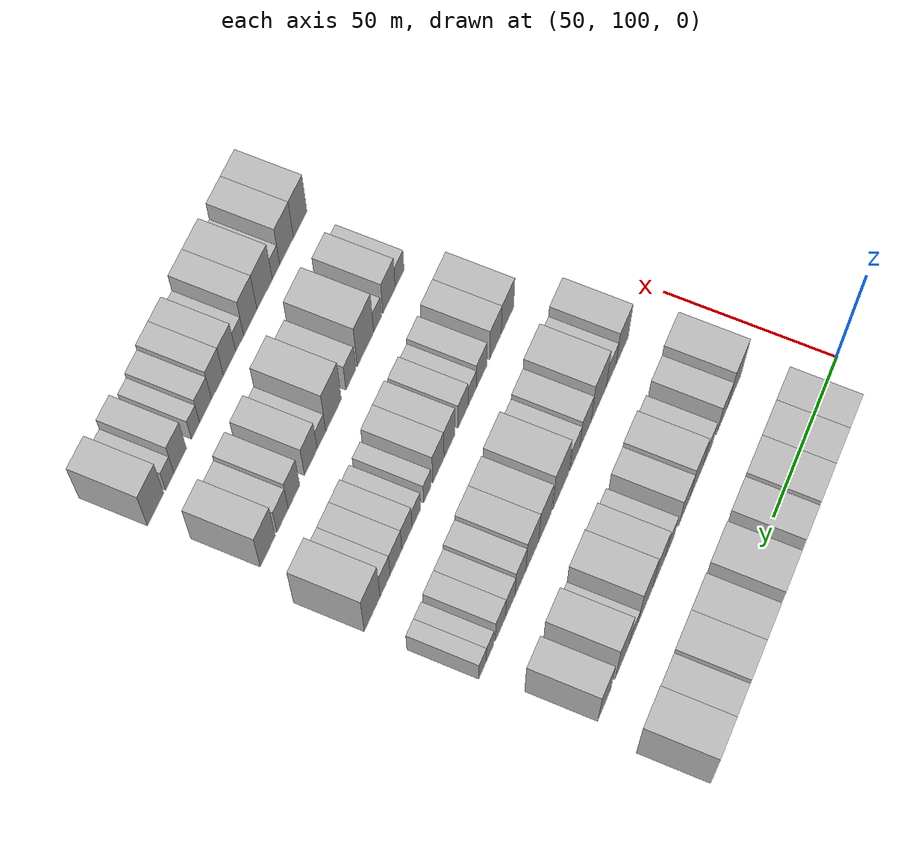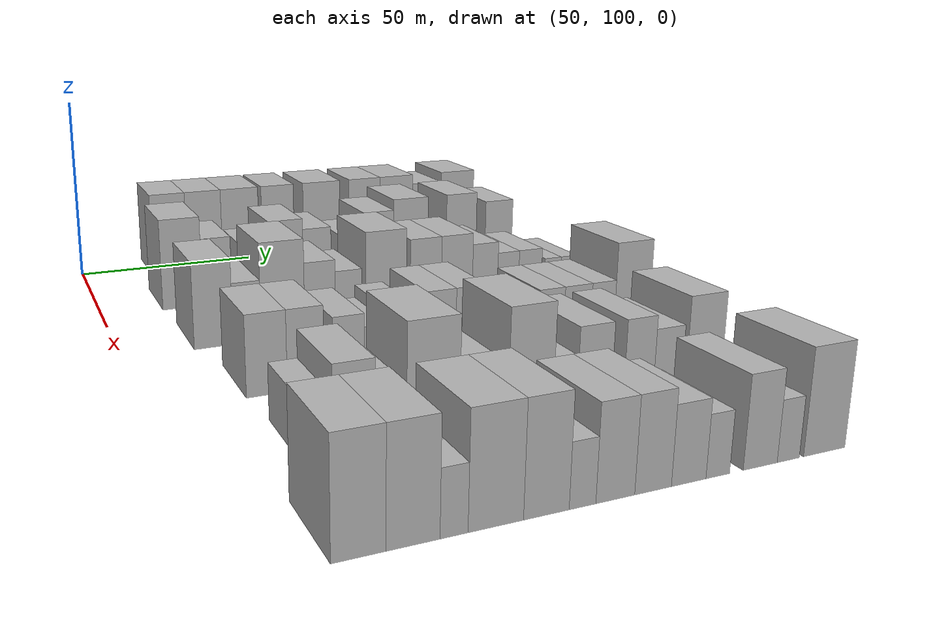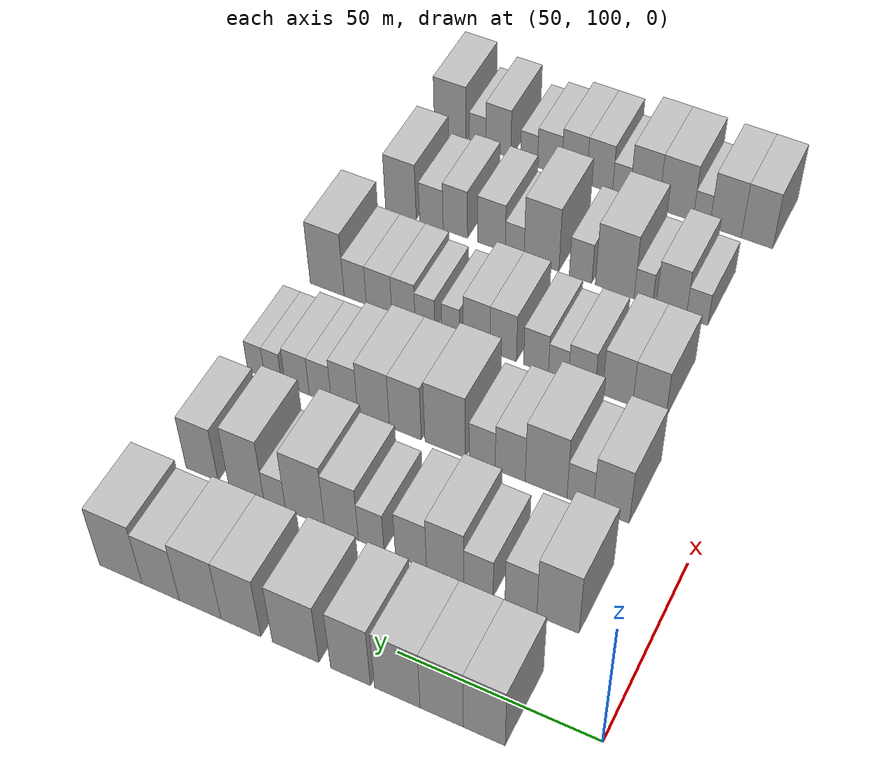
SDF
<sdf version="1.6">
 <world name="default">
  <model name="building_69">
   <static>1</static>
   <pose>50.0000 123.7591 0 0.000000 0.000000 0.000000</pose>
   <link name="link">
    <pose>0 0 12.00 0 0 0</pose>
    <collision name="collision"><geometry><box><size>20.0000 10.0753 24.0000</size></box></geometry></collision>
    <visual name="visual">
     <cast_shadows>0</cast_shadows>
     <geometry><box><size>20.0000 10.0753 24.0000</size></box></geometry>
     <material>
      <script>
       <uri>model://HANNAS_wall/materials/scripts</uri>
       <uri>model://HANNAS_wall/materials/textures</uri>
       <name>vrc/HANNAS_wall</name>
      </script>
     </material>
    </visual>
   </link>
  </model>
  <model name="building_70">
   <static>1</static>
   <pose>50.0000 134.0763 0 0.000000 0.000000 0.000000</pose>
   <link name="link">
    <pose>0 0 12.00 0 0 0</pose>
    <collision name="collision"><geometry><box><size>20.0000 10.5591 24.0000</size></box></geometry></collision>
    <visual name="visual">
     <cast_shadows>0</cast_shadows>
     <geometry><box><size>20.0000 10.5591 24.0000</size></box></geometry>
     <material>
      <script>
       <uri>model://HANNAS_wall/materials/scripts</uri>
       <uri>model://HANNAS_wall/materials/textures</uri>
       <name>vrc/HANNAS_wall</name>
      </script>
     </material>
    </visual>
   </link>
  </model>
  <model name="building_71">
   <static>1</static>
   <pose>50.0000 144.9980 0 0.000000 0.000000 0.000000</pose>
   <link name="link">
    <pose>0 0 12.00 0 0 0</pose>
    <collision name="collision"><geometry><box><size>20.0000 11.2843 24.0000</size></box></geometry></collision>
    <visual name="visual">
     <cast_shadows>0</cast_shadows>
     <geometry><box><size>20.0000 11.2843 24.0000</size></box></geometry>
     <material>
      <script>
       <uri>model://HANNAS_wall/materials/scripts</uri>
       <uri>model://HANNAS_wall/materials/textures</uri>
       <name>vrc/HANNAS_wall</name>
      </script>
     </material>
    </visual>
   </link>
  </model>
  <model name="building_72">
   <static>1</static>
   <pose>50.0000 156.6652 0 0.000000 0.000000 0.000000</pose>
   <link name="link">
    <pose>0 0 12.00 0 0 0</pose>
    <collision name="collision"><geometry><box><size>20.0000 10.0502 24.0000</size></box></geometry></collision>
    <visual name="visual">
     <cast_shadows>0</cast_shadows>
     <geometry><box><size>20.0000 10.0502 24.0000</size></box></geometry>
     <material>
      <script>
       <uri>model://HANNAS_wall/materials/scripts</uri>
       <uri>model://HANNAS_wall/materials/textures</uri>
       <name>vrc/HANNAS_wall</name>
      </script>
     </material>
    </visual>
   </link>
  </model>
  <model name="building_73">
   <static>1</static>
   <pose>50.0000 170.6518 0 0.000000 0.000000 0.000000</pose>
   <link name="link">
    <pose>0 0 12.00 0 0 0</pose>
    <collision name="collision"><geometry><box><size>20.0000 11.9229 24.0000</size></box></geometry></collision>
    <visual name="visual">
     <cast_shadows>0</cast_shadows>
     <geometry><box><size>20.0000 11.9229 24.0000</size></box></geometry>
     <material>
      <script>
       <uri>model://HANNAS_wall/materials/scripts</uri>
       <uri>model://HANNAS_wall/materials/textures</uri>
       <name>vrc/HANNAS_wall</name>
      </script>
     </material>
    </visual>
   </link>
  </model>
  <model name="building_74">
   <static>1</static>
   <pose>50.0000 184.8121 0 0.000000 0.000000 0.000000</pose>
   <link name="link">
    <pose>0 0 12.00 0 0 0</pose>
    <collision name="collision"><geometry><box><size>20.0000 10.3978 24.0000</size></box></geometry></collision>
    <visual name="visual">
     <cast_shadows>0</cast_shadows>
     <geometry><box><size>20.0000 10.3978 24.0000</size></box></geometry>
     <material>
      <script>
       <uri>model://HANNAS_wall/materials/scripts</uri>
       <uri>model://HANNAS_wall/materials/textures</uri>
       <name>vrc/HANNAS_wall</name>
      </script>
     </material>
    </visual>
   </link>
  </model>
  <model name="building_75">
   <static>1</static>
   <pose>50.0000 195.5651 0 0.000000 0.000000 0.000000</pose>
   <link name="link">
    <pose>0 0 12.00 0 0 0</pose>
    <collision name="collision"><geometry><box><size>20.0000 11.1081 24.0000</size></box></geometry></collision>
    <visual name="visual">
     <cast_shadows>0</cast_shadows>
     <geometry><box><size>20.0000 11.1081 24.0000</size></box></geometry>
     <material>
      <script>
       <uri>model://HANNAS_wall/materials/scripts</uri>
       <uri>model://HANNAS_wall/materials/textures</uri>
       <name>vrc/HANNAS_wall</name>
      </script>
     </material>
    </visual>
   </link>
  </model>
  <model name="building_76">
   <static>1</static>
   <pose>50.0000 206.1168 0 0.000000 0.000000 0.000000</pose>
   <link name="link">
    <pose>0 0 10.50 0 0 0</pose>
    <collision name="collision"><geometry><box><size>20.0000 9.9954 21.0000</size></box></geometry></collision>
    <visual name="visual">
     <cast_shadows>0</cast_shadows>
     <geometry><box><size>20.0000 9.9954 21.0000</size></box></geometry>
     <material>
      <script>
       <uri>model://HANNAS_wall/materials/scripts</uri>
       <uri>model://HANNAS_wall/materials/textures</uri>
       <name>vrc/HANNAS_wall</name>
      </script>
     </material>
    </visual>
   </link>
  </model>
  <model name="building_77">
   <static>1</static>
   <pose>50.0000 216.9283 0 0.000000 0.000000 0.000000</pose>
   <link name="link">
    <pose>0 0 12.00 0 0 0</pose>
    <collision name="collision"><geometry><box><size>20.0000 11.6275 24.0000</size></box></geometry></collision>
    <visual name="visual">
     <cast_shadows>0</cast_shadows>
     <geometry><box><size>20.0000 11.6275 24.0000</size></box></geometry>
     <material>
      <script>
       <uri>model://HANNAS_wall/materials/scripts</uri>
       <uri>model://HANNAS_wall/materials/textures</uri>
       <name>vrc/HANNAS_wall</name>
      </script>
     </material>
    </visual>
   </link>
  </model>
  <model name="building_168">
   <static>1</static>
   <pose>82.0000 120.6377 0 0.000000 0.000000 0.000000</pose>
   <link name="link">
    <pose>0 0 12.00 0 0 0</pose>
    <collision name="collision"><geometry><box><size>20.0000 10.4998 24.0000</size></box></geometry></collision>
    <visual name="visual">
     <cast_shadows>0</cast_shadows>
     <geometry><box><size>20.0000 10.4998 24.0000</size></box></geometry>
     <material>
      <script>
       <uri>model://HANNAS_wall/materials/scripts</uri>
       <uri>model://HANNAS_wall/materials/textures</uri>
       <name>vrc/HANNAS_wall</name>
      </script>
     </material>
    </visual>
   </link>
  </model>
  <model name="building_169">
   <static>1</static>
   <pose>82.0000 129.8772 0 0.000000 0.000000 0.000000</pose>
   <link name="link">
    <pose>0 0 9.00 0 0 0</pose>
    <collision name="collision"><geometry><box><size>20.0000 7.9793 18.0000</size></box></geometry></collision>
    <visual name="visual">
     <cast_shadows>0</cast_shadows>
     <geometry><box><size>20.0000 7.9793 18.0000</size></box></geometry>
     <material>
      <script>
       <uri>model://HANNAS_wall/materials/scripts</uri>
       <uri>model://HANNAS_wall/materials/textures</uri>
       <name>vrc/HANNAS_wall</name>
      </script>
     </material>
    </visual>
   </link>
  </model>
  <model name="building_170">
   <static>1</static>
   <pose>82.0000 140.5922 0 0.000000 0.000000 0.000000</pose>
   <link name="link">
    <pose>0 0 7.50 0 0 0</pose>
    <collision name="collision"><geometry><box><size>20.0000 7.4507 15.0000</size></box></geometry></collision>
    <visual name="visual">
     <cast_shadows>0</cast_shadows>
     <geometry><box><size>20.0000 7.4507 15.0000</size></box></geometry>
     <material>
      <script>
       <uri>model://HANNAS_wall/materials/scripts</uri>
       <uri>model://HANNAS_wall/materials/textures</uri>
       <name>vrc/HANNAS_wall</name>
      </script>
     </material>
    </visual>
   </link>
  </model>
  <model name="building_171">
   <static>1</static>
   <pose>82.0000 149.1295 0 0.000000 0.000000 0.000000</pose>
   <link name="link">
    <pose>0 0 10.50 0 0 0</pose>
    <collision name="collision"><geometry><box><size>20.0000 9.6239 21.0000</size></box></geometry></collision>
    <visual name="visual">
     <cast_shadows>0</cast_shadows>
     <geometry><box><size>20.0000 9.6239 21.0000</size></box></geometry>
     <material>
      <script>
       <uri>model://HANNAS_wall/materials/scripts</uri>
       <uri>model://HANNAS_wall/materials/textures</uri>
       <name>vrc/HANNAS_wall</name>
      </script>
     </material>
    </visual>
   </link>
  </model>
  <model name="building_172">
   <static>1</static>
   <pose>82.0000 157.9962 0 0.000000 0.000000 0.000000</pose>
   <link name="link">
    <pose>0 0 9.00 0 0 0</pose>
    <collision name="collision"><geometry><box><size>20.0000 8.1096 18.0000</size></box></geometry></collision>
    <visual name="visual">
     <cast_shadows>0</cast_shadows>
     <geometry><box><size>20.0000 8.1096 18.0000</size></box></geometry>
     <material>
      <script>
       <uri>model://HANNAS_wall/materials/scripts</uri>
       <uri>model://HANNAS_wall/materials/textures</uri>
       <name>vrc/HANNAS_wall</name>
      </script>
     </material>
    </visual>
   </link>
  </model>
  <model name="building_173">
   <static>1</static>
   <pose>82.0000 168.4247 0 0.000000 0.000000 0.000000</pose>
   <link name="link">
    <pose>0 0 7.50 0 0 0</pose>
    <collision name="collision"><geometry><box><size>20.0000 6.7474 15.0000</size></box></geometry></collision>
    <visual name="visual">
     <cast_shadows>0</cast_shadows>
     <geometry><box><size>20.0000 6.7474 15.0000</size></box></geometry>
     <material>
      <script>
       <uri>model://HANNAS_wall/materials/scripts</uri>
       <uri>model://HANNAS_wall/materials/textures</uri>
       <name>vrc/HANNAS_wall</name>
      </script>
     </material>
    </visual>
   </link>
  </model>
  <model name="building_174">
   <static>1</static>
   <pose>82.0000 176.3094 0 0.000000 0.000000 0.000000</pose>
   <link name="link">
    <pose>0 0 10.50 0 0 0</pose>
    <collision name="collision"><geometry><box><size>20.0000 9.0221 21.0000</size></box></geometry></collision>
    <visual name="visual">
     <cast_shadows>0</cast_shadows>
     <geometry><box><size>20.0000 9.0221 21.0000</size></box></geometry>
     <material>
      <script>
       <uri>model://HANNAS_wall/materials/scripts</uri>
       <uri>model://HANNAS_wall/materials/textures</uri>
       <name>vrc/HANNAS_wall</name>
      </script>
     </material>
    </visual>
   </link>
  </model>
  <model name="building_175">
   <static>1</static>
   <pose>82.0000 186.1241 0 0.000000 0.000000 0.000000</pose>
   <link name="link">
    <pose>0 0 12.00 0 0 0</pose>
    <collision name="collision"><geometry><box><size>20.0000 10.6072 24.0000</size></box></geometry></collision>
    <visual name="visual">
     <cast_shadows>0</cast_shadows>
     <geometry><box><size>20.0000 10.6072 24.0000</size></box></geometry>
     <material>
      <script>
       <uri>model://HANNAS_wall/materials/scripts</uri>
       <uri>model://HANNAS_wall/materials/textures</uri>
       <name>vrc/HANNAS_wall</name>
      </script>
     </material>
    </visual>
   </link>
  </model>
  <model name="building_176">
   <static>1</static>
   <pose>82.0000 194.3829 0 0.000000 0.000000 0.000000</pose>
   <link name="link">
    <pose>0 0 6.00 0 0 0</pose>
    <collision name="collision"><geometry><box><size>20.0000 5.9103 12.0000</size></box></geometry></collision>
    <visual name="visual">
     <cast_shadows>0</cast_shadows>
     <geometry><box><size>20.0000 5.9103 12.0000</size></box></geometry>
     <material>
      <script>
       <uri>model://HANNAS_wall/materials/scripts</uri>
       <uri>model://HANNAS_wall/materials/textures</uri>
       <name>vrc/HANNAS_wall</name>
      </script>
     </material>
    </visual>
   </link>
  </model>
  <model name="building_177">
   <static>1</static>
   <pose>82.0000 202.1694 0 0.000000 0.000000 0.000000</pose>
   <link name="link">
    <pose>0 0 12.00 0 0 0</pose>
    <collision name="collision"><geometry><box><size>20.0000 9.6629 24.0000</size></box></geometry></collision>
    <visual name="visual">
     <cast_shadows>0</cast_shadows>
     <geometry><box><size>20.0000 9.6629 24.0000</size></box></geometry>
     <material>
      <script>
       <uri>model://HANNAS_wall/materials/scripts</uri>
       <uri>model://HANNAS_wall/materials/textures</uri>
       <name>vrc/HANNAS_wall</name>
      </script>
     </material>
    </visual>
   </link>
  </model>
  <model name="building_178">
   <static>1</static>
   <pose>82.0000 214.4754 0 0.000000 0.000000 0.000000</pose>
   <link name="link">
    <pose>0 0 10.50 0 0 0</pose>
    <collision name="collision"><geometry><box><size>20.0000 8.9491 21.0000</size></box></geometry></collision>
    <visual name="visual">
     <cast_shadows>0</cast_shadows>
     <geometry><box><size>20.0000 8.9491 21.0000</size></box></geometry>
     <material>
      <script>
       <uri>model://HANNAS_wall/materials/scripts</uri>
       <uri>model://HANNAS_wall/materials/textures</uri>
       <name>vrc/HANNAS_wall</name>
      </script>
     </material>
    </visual>
   </link>
  </model>
  <model name="building_288">
   <static>1</static>
   <pose>114.0000 121.1689 0 0.000000 0.000000 0.000000</pose>
   <link name="link">
    <pose>0 0 10.50 0 0 0</pose>
    <collision name="collision"><geometry><box><size>20.0000 9.2484 21.0000</size></box></geometry></collision>
    <visual name="visual">
     <cast_shadows>0</cast_shadows>
     <geometry><box><size>20.0000 9.2484 21.0000</size></box></geometry>
     <material>
      <script>
       <uri>model://HANNAS_wall/materials/scripts</uri>
       <uri>model://HANNAS_wall/materials/textures</uri>
       <name>vrc/HANNAS_wall</name>
      </script>
     </material>
    </visual>
   </link>
  </model>
  <model name="building_289">
   <static>1</static>
   <pose>114.0000 129.2201 0 0.000000 0.000000 0.000000</pose>
   <link name="link">
    <pose>0 0 7.50 0 0 0</pose>
    <collision name="collision"><geometry><box><size>20.0000 6.8539 15.0000</size></box></geometry></collision>
    <visual name="visual">
     <cast_shadows>0</cast_shadows>
     <geometry><box><size>20.0000 6.8539 15.0000</size></box></geometry>
     <material>
      <script>
       <uri>model://HANNAS_wall/materials/scripts</uri>
       <uri>model://HANNAS_wall/materials/textures</uri>
       <name>vrc/HANNAS_wall</name>
      </script>
     </material>
    </visual>
   </link>
  </model>
  <model name="building_290">
   <static>1</static>
   <pose>114.0000 138.1390 0 0.000000 0.000000 0.000000</pose>
   <link name="link">
    <pose>0 0 12.00 0 0 0</pose>
    <collision name="collision"><geometry><box><size>20.0000 10.9840 24.0000</size></box></geometry></collision>
    <visual name="visual">
     <cast_shadows>0</cast_shadows>
     <geometry><box><size>20.0000 10.9840 24.0000</size></box></geometry>
     <material>
      <script>
       <uri>model://HANNAS_wall/materials/scripts</uri>
       <uri>model://HANNAS_wall/materials/textures</uri>
       <name>vrc/HANNAS_wall</name>
      </script>
     </material>
    </visual>
   </link>
  </model>
  <model name="building_291">
   <static>1</static>
   <pose>114.0000 147.6111 0 0.000000 0.000000 0.000000</pose>
   <link name="link">
    <pose>0 0 9.00 0 0 0</pose>
    <collision name="collision"><geometry><box><size>20.0000 7.9601 18.0000</size></box></geometry></collision>
    <visual name="visual">
     <cast_shadows>0</cast_shadows>
     <geometry><box><size>20.0000 7.9601 18.0000</size></box></geometry>
     <material>
      <script>
       <uri>model://HANNAS_wall/materials/scripts</uri>
       <uri>model://HANNAS_wall/materials/textures</uri>
       <name>vrc/HANNAS_wall</name>
      </script>
     </material>
    </visual>
   </link>
  </model>
  <model name="building_292">
   <static>1</static>
   <pose>114.0000 155.0831 0 0.000000 0.000000 0.000000</pose>
   <link name="link">
    <pose>0 0 7.50 0 0 0</pose>
    <collision name="collision"><geometry><box><size>20.0000 6.9839 15.0000</size></box></geometry></collision>
    <visual name="visual">
     <cast_shadows>0</cast_shadows>
     <geometry><box><size>20.0000 6.9839 15.0000</size></box></geometry>
     <material>
      <script>
       <uri>model://HANNAS_wall/materials/scripts</uri>
       <uri>model://HANNAS_wall/materials/textures</uri>
       <name>vrc/HANNAS_wall</name>
      </script>
     </material>
    </visual>
   </link>
  </model>
  <model name="building_293">
   <static>1</static>
   <pose>114.0000 165.0633 0 0.000000 0.000000 0.000000</pose>
   <link name="link">
    <pose>0 0 12.00 0 0 0</pose>
    <collision name="collision"><geometry><box><size>20.0000 10.9765 24.0000</size></box></geometry></collision>
    <visual name="visual">
     <cast_shadows>0</cast_shadows>
     <geometry><box><size>20.0000 10.9765 24.0000</size></box></geometry>
     <material>
      <script>
       <uri>model://HANNAS_wall/materials/scripts</uri>
       <uri>model://HANNAS_wall/materials/textures</uri>
       <name>vrc/HANNAS_wall</name>
      </script>
     </material>
    </visual>
   </link>
  </model>
  <model name="building_294">
   <static>1</static>
   <pose>114.0000 175.9234 0 0.000000 0.000000 0.000000</pose>
   <link name="link">
    <pose>0 0 10.50 0 0 0</pose>
    <collision name="collision"><geometry><box><size>20.0000 8.7436 21.0000</size></box></geometry></collision>
    <visual name="visual">
     <cast_shadows>0</cast_shadows>
     <geometry><box><size>20.0000 8.7436 21.0000</size></box></geometry>
     <material>
      <script>
       <uri>model://HANNAS_wall/materials/scripts</uri>
       <uri>model://HANNAS_wall/materials/textures</uri>
       <name>vrc/HANNAS_wall</name>
      </script>
     </material>
    </visual>
   </link>
  </model>
  <model name="building_295">
   <static>1</static>
   <pose>114.0000 184.7116 0 0.000000 0.000000 0.000000</pose>
   <link name="link">
    <pose>0 0 10.50 0 0 0</pose>
    <collision name="collision"><geometry><box><size>20.0000 8.8327 21.0000</size></box></geometry></collision>
    <visual name="visual">
     <cast_shadows>0</cast_shadows>
     <geometry><box><size>20.0000 8.8327 21.0000</size></box></geometry>
     <material>
      <script>
       <uri>model://HANNAS_wall/materials/scripts</uri>
       <uri>model://HANNAS_wall/materials/textures</uri>
       <name>vrc/HANNAS_wall</name>
      </script>
     </material>
    </visual>
   </link>
  </model>
  <model name="building_296">
   <static>1</static>
   <pose>114.0000 192.8135 0 0.000000 0.000000 0.000000</pose>
   <link name="link">
    <pose>0 0 9.00 0 0 0</pose>
    <collision name="collision"><geometry><box><size>20.0000 7.3713 18.0000</size></box></geometry></collision>
    <visual name="visual">
     <cast_shadows>0</cast_shadows>
     <geometry><box><size>20.0000 7.3713 18.0000</size></box></geometry>
     <material>
      <script>
       <uri>model://HANNAS_wall/materials/scripts</uri>
       <uri>model://HANNAS_wall/materials/textures</uri>
       <name>vrc/HANNAS_wall</name>
      </script>
     </material>
    </visual>
   </link>
  </model>
  <model name="building_297">
   <static>1</static>
   <pose>114.0000 199.6403 0 0.000000 0.000000 0.000000</pose>
   <link name="link">
    <pose>0 0 7.50 0 0 0</pose>
    <collision name="collision"><geometry><box><size>20.0000 6.2823 15.0000</size></box></geometry></collision>
    <visual name="visual">
     <cast_shadows>0</cast_shadows>
     <geometry><box><size>20.0000 6.2823 15.0000</size></box></geometry>
     <material>
      <script>
       <uri>model://HANNAS_wall/materials/scripts</uri>
       <uri>model://HANNAS_wall/materials/textures</uri>
       <name>vrc/HANNAS_wall</name>
      </script>
     </material>
    </visual>
   </link>
  </model>
  <model name="building_298">
   <static>1</static>
   <pose>114.0000 206.2403 0 0.000000 0.000000 0.000000</pose>
   <link name="link">
    <pose>0 0 7.50 0 0 0</pose>
    <collision name="collision"><geometry><box><size>20.0000 6.9176 15.0000</size></box></geometry></collision>
    <visual name="visual">
     <cast_shadows>0</cast_shadows>
     <geometry><box><size>20.0000 6.9176 15.0000</size></box></geometry>
     <material>
      <script>
       <uri>model://HANNAS_wall/materials/scripts</uri>
       <uri>model://HANNAS_wall/materials/textures</uri>
       <name>vrc/HANNAS_wall</name>
      </script>
     </material>
    </visual>
   </link>
  </model>
  <model name="building_299">
   <static>1</static>
   <pose>114.0000 213.1508 0 0.000000 0.000000 0.000000</pose>
   <link name="link">
    <pose>0 0 6.00 0 0 0</pose>
    <collision name="collision"><geometry><box><size>20.0000 4.9034 12.0000</size></box></geometry></collision>
    <visual name="visual">
     <cast_shadows>0</cast_shadows>
     <geometry><box><size>20.0000 4.9034 12.0000</size></box></geometry>
     <material>
      <script>
       <uri>model://HANNAS_wall/materials/scripts</uri>
       <uri>model://HANNAS_wall/materials/textures</uri>
       <name>vrc/HANNAS_wall</name>
      </script>
     </material>
    </visual>
   </link>
  </model>
  <model name="building_300">
   <static>1</static>
   <pose>114.0000 218.0530 0 0.000000 0.000000 0.000000</pose>
   <link name="link">
    <pose>0 0 6.00 0 0 0</pose>
    <collision name="collision"><geometry><box><size>20.0000 4.9011 12.0000</size></box></geometry></collision>
    <visual name="visual">
     <cast_shadows>0</cast_shadows>
     <geometry><box><size>20.0000 4.9011 12.0000</size></box></geometry>
     <material>
      <script>
       <uri>model://HANNAS_wall/materials/scripts</uri>
       <uri>model://HANNAS_wall/materials/textures</uri>
       <name>vrc/HANNAS_wall</name>
      </script>
     </material>
    </visual>
   </link>
  </model>
  <model name="building_412">
   <static>1</static>
   <pose>146.0000 124.6776 0 0.000000 0.000000 0.000000</pose>
   <link name="link">
    <pose>0 0 9.00 0 0 0</pose>
    <collision name="collision"><geometry><box><size>20.0000 8.8082 18.0000</size></box></geometry></collision>
    <visual name="visual">
     <cast_shadows>0</cast_shadows>
     <geometry><box><size>20.0000 8.8082 18.0000</size></box></geometry>
     <material>
      <script>
       <uri>model://HANNAS_wall/materials/scripts</uri>
       <uri>model://HANNAS_wall/materials/textures</uri>
       <name>vrc/HANNAS_wall</name>
      </script>
     </material>
    </visual>
   </link>
  </model>
  <model name="building_413">
   <static>1</static>
   <pose>146.0000 133.1468 0 0.000000 0.000000 0.000000</pose>
   <link name="link">
    <pose>0 0 9.00 0 0 0</pose>
    <collision name="collision"><geometry><box><size>20.0000 8.1303 18.0000</size></box></geometry></collision>
    <visual name="visual">
     <cast_shadows>0</cast_shadows>
     <geometry><box><size>20.0000 8.1303 18.0000</size></box></geometry>
     <material>
      <script>
       <uri>model://HANNAS_wall/materials/scripts</uri>
       <uri>model://HANNAS_wall/materials/textures</uri>
       <name>vrc/HANNAS_wall</name>
      </script>
     </material>
    </visual>
   </link>
  </model>
  <model name="building_414">
   <static>1</static>
   <pose>146.0000 142.8515 0 0.000000 0.000000 0.000000</pose>
   <link name="link">
    <pose>0 0 7.50 0 0 0</pose>
    <collision name="collision"><geometry><box><size>20.0000 7.2791 15.0000</size></box></geometry></collision>
    <visual name="visual">
     <cast_shadows>0</cast_shadows>
     <geometry><box><size>20.0000 7.2791 15.0000</size></box></geometry>
     <material>
      <script>
       <uri>model://HANNAS_wall/materials/scripts</uri>
       <uri>model://HANNAS_wall/materials/textures</uri>
       <name>vrc/HANNAS_wall</name>
      </script>
     </material>
    </visual>
   </link>
  </model>
  <model name="building_415">
   <static>1</static>
   <pose>146.0000 149.2528 0 0.000000 0.000000 0.000000</pose>
   <link name="link">
    <pose>0 0 6.00 0 0 0</pose>
    <collision name="collision"><geometry><box><size>20.0000 5.5235 12.0000</size></box></geometry></collision>
    <visual name="visual">
     <cast_shadows>0</cast_shadows>
     <geometry><box><size>20.0000 5.5235 12.0000</size></box></geometry>
     <material>
      <script>
       <uri>model://HANNAS_wall/materials/scripts</uri>
       <uri>model://HANNAS_wall/materials/textures</uri>
       <name>vrc/HANNAS_wall</name>
      </script>
     </material>
    </visual>
   </link>
  </model>
  <model name="building_416">
   <static>1</static>
   <pose>146.0000 155.4478 0 0.000000 0.000000 0.000000</pose>
   <link name="link">
    <pose>0 0 7.50 0 0 0</pose>
    <collision name="collision"><geometry><box><size>20.0000 6.8664 15.0000</size></box></geometry></collision>
    <visual name="visual">
     <cast_shadows>0</cast_shadows>
     <geometry><box><size>20.0000 6.8664 15.0000</size></box></geometry>
     <material>
      <script>
       <uri>model://HANNAS_wall/materials/scripts</uri>
       <uri>model://HANNAS_wall/materials/textures</uri>
       <name>vrc/HANNAS_wall</name>
      </script>
     </material>
    </visual>
   </link>
  </model>
  <model name="building_417">
   <static>1</static>
   <pose>146.0000 164.5799 0 0.000000 0.000000 0.000000</pose>
   <link name="link">
    <pose>0 0 9.00 0 0 0</pose>
    <collision name="collision"><geometry><box><size>20.0000 7.3980 18.0000</size></box></geometry></collision>
    <visual name="visual">
     <cast_shadows>0</cast_shadows>
     <geometry><box><size>20.0000 7.3980 18.0000</size></box></geometry>
     <material>
      <script>
       <uri>model://HANNAS_wall/materials/scripts</uri>
       <uri>model://HANNAS_wall/materials/textures</uri>
       <name>vrc/HANNAS_wall</name>
      </script>
     </material>
    </visual>
   </link>
  </model>
  <model name="building_418">
   <static>1</static>
   <pose>146.0000 172.0785 0 0.000000 0.000000 0.000000</pose>
   <link name="link">
    <pose>0 0 9.00 0 0 0</pose>
    <collision name="collision"><geometry><box><size>20.0000 7.5991 18.0000</size></box></geometry></collision>
    <visual name="visual">
     <cast_shadows>0</cast_shadows>
     <geometry><box><size>20.0000 7.5991 18.0000</size></box></geometry>
     <material>
      <script>
       <uri>model://HANNAS_wall/materials/scripts</uri>
       <uri>model://HANNAS_wall/materials/textures</uri>
       <name>vrc/HANNAS_wall</name>
      </script>
     </material>
    </visual>
   </link>
  </model>
  <model name="building_419">
   <static>1</static>
   <pose>146.0000 179.4049 0 0.000000 0.000000 0.000000</pose>
   <link name="link">
    <pose>0 0 6.00 0 0 0</pose>
    <collision name="collision"><geometry><box><size>20.0000 5.0537 12.0000</size></box></geometry></collision>
    <visual name="visual">
     <cast_shadows>0</cast_shadows>
     <geometry><box><size>20.0000 5.0537 12.0000</size></box></geometry>
     <material>
      <script>
       <uri>model://HANNAS_wall/materials/scripts</uri>
       <uri>model://HANNAS_wall/materials/textures</uri>
       <name>vrc/HANNAS_wall</name>
      </script>
     </material>
    </visual>
   </link>
  </model>
  <model name="building_420">
   <static>1</static>
   <pose>146.0000 186.7535 0 0.000000 0.000000 0.000000</pose>
   <link name="link">
    <pose>0 0 6.00 0 0 0</pose>
    <collision name="collision"><geometry><box><size>20.0000 5.6435 12.0000</size></box></geometry></collision>
    <visual name="visual">
     <cast_shadows>0</cast_shadows>
     <geometry><box><size>20.0000 5.6435 12.0000</size></box></geometry>
     <material>
      <script>
       <uri>model://HANNAS_wall/materials/scripts</uri>
       <uri>model://HANNAS_wall/materials/textures</uri>
       <name>vrc/HANNAS_wall</name>
      </script>
     </material>
    </visual>
   </link>
  </model>
  <model name="building_421">
   <static>1</static>
   <pose>146.0000 192.9501 0 0.000000 0.000000 0.000000</pose>
   <link name="link">
    <pose>0 0 7.50 0 0 0</pose>
    <collision name="collision"><geometry><box><size>20.0000 6.7498 15.0000</size></box></geometry></collision>
    <visual name="visual">
     <cast_shadows>0</cast_shadows>
     <geometry><box><size>20.0000 6.7498 15.0000</size></box></geometry>
     <material>
      <script>
       <uri>model://HANNAS_wall/materials/scripts</uri>
       <uri>model://HANNAS_wall/materials/textures</uri>
       <name>vrc/HANNAS_wall</name>
      </script>
     </material>
    </visual>
   </link>
  </model>
  <model name="building_422">
   <static>1</static>
   <pose>146.0000 200.0481 0 0.000000 0.000000 0.000000</pose>
   <link name="link">
    <pose>0 0 7.50 0 0 0</pose>
    <collision name="collision"><geometry><box><size>20.0000 7.4462 15.0000</size></box></geometry></collision>
    <visual name="visual">
     <cast_shadows>0</cast_shadows>
     <geometry><box><size>20.0000 7.4462 15.0000</size></box></geometry>
     <material>
      <script>
       <uri>model://HANNAS_wall/materials/scripts</uri>
       <uri>model://HANNAS_wall/materials/textures</uri>
       <name>vrc/HANNAS_wall</name>
      </script>
     </material>
    </visual>
   </link>
  </model>
  <model name="building_423">
   <static>1</static>
   <pose>146.0000 207.0481 0 0.000000 0.000000 0.000000</pose>
   <link name="link">
    <pose>0 0 7.50 0 0 0</pose>
    <collision name="collision"><geometry><box><size>20.0000 6.5536 15.0000</size></box></geometry></collision>
    <visual name="visual">
     <cast_shadows>0</cast_shadows>
     <geometry><box><size>20.0000 6.5536 15.0000</size></box></geometry>
     <material>
      <script>
       <uri>model://HANNAS_wall/materials/scripts</uri>
       <uri>model://HANNAS_wall/materials/textures</uri>
       <name>vrc/HANNAS_wall</name>
      </script>
     </material>
    </visual>
   </link>
  </model>
  <model name="building_424">
   <static>1</static>
   <pose>146.0000 215.3480 0 0.000000 0.000000 0.000000</pose>
   <link name="link">
    <pose>0 0 12.00 0 0 0</pose>
    <collision name="collision"><geometry><box><size>20.0000 10.0463 24.0000</size></box></geometry></collision>
    <visual name="visual">
     <cast_shadows>0</cast_shadows>
     <geometry><box><size>20.0000 10.0463 24.0000</size></box></geometry>
     <material>
      <script>
       <uri>model://HANNAS_wall/materials/scripts</uri>
       <uri>model://HANNAS_wall/materials/textures</uri>
       <name>vrc/HANNAS_wall</name>
      </script>
     </material>
    </visual>
   </link>
  </model>
  <model name="building_539">
   <static>1</static>
   <pose>178.0000 124.5671 0 0.000000 0.000000 0.000000</pose>
   <link name="link">
    <pose>0 0 6.00 0 0 0</pose>
    <collision name="collision"><geometry><box><size>20.0000 5.9728 12.0000</size></box></geometry></collision>
    <visual name="visual">
     <cast_shadows>0</cast_shadows>
     <geometry><box><size>20.0000 5.9728 12.0000</size></box></geometry>
     <material>
      <script>
       <uri>model://HANNAS_wall/materials/scripts</uri>
       <uri>model://HANNAS_wall/materials/textures</uri>
       <name>vrc/HANNAS_wall</name>
      </script>
     </material>
    </visual>
   </link>
  </model>
  <model name="building_540">
   <static>1</static>
   <pose>178.0000 131.7388 0 0.000000 0.000000 0.000000</pose>
   <link name="link">
    <pose>0 0 9.00 0 0 0</pose>
    <collision name="collision"><geometry><box><size>20.0000 8.3706 18.0000</size></box></geometry></collision>
    <visual name="visual">
     <cast_shadows>0</cast_shadows>
     <geometry><box><size>20.0000 8.3706 18.0000</size></box></geometry>
     <material>
      <script>
       <uri>model://HANNAS_wall/materials/scripts</uri>
       <uri>model://HANNAS_wall/materials/textures</uri>
       <name>vrc/HANNAS_wall</name>
      </script>
     </material>
    </visual>
   </link>
  </model>
  <model name="building_541">
   <static>1</static>
   <pose>178.0000 139.5030 0 0.000000 0.000000 0.000000</pose>
   <link name="link">
    <pose>0 0 6.00 0 0 0</pose>
    <collision name="collision"><geometry><box><size>20.0000 5.1579 12.0000</size></box></geometry></collision>
    <visual name="visual">
     <cast_shadows>0</cast_shadows>
     <geometry><box><size>20.0000 5.1579 12.0000</size></box></geometry>
     <material>
      <script>
       <uri>model://HANNAS_wall/materials/scripts</uri>
       <uri>model://HANNAS_wall/materials/textures</uri>
       <name>vrc/HANNAS_wall</name>
      </script>
     </material>
    </visual>
   </link>
  </model>
  <model name="building_542">
   <static>1</static>
   <pose>178.0000 147.5618 0 0.000000 0.000000 0.000000</pose>
   <link name="link">
    <pose>0 0 12.00 0 0 0</pose>
    <collision name="collision"><geometry><box><size>20.0000 10.9597 24.0000</size></box></geometry></collision>
    <visual name="visual">
     <cast_shadows>0</cast_shadows>
     <geometry><box><size>20.0000 10.9597 24.0000</size></box></geometry>
     <material>
      <script>
       <uri>model://HANNAS_wall/materials/scripts</uri>
       <uri>model://HANNAS_wall/materials/textures</uri>
       <name>vrc/HANNAS_wall</name>
      </script>
     </material>
    </visual>
   </link>
  </model>
  <model name="building_543">
   <static>1</static>
   <pose>178.0000 157.2616 0 0.000000 0.000000 0.000000</pose>
   <link name="link">
    <pose>0 0 7.50 0 0 0</pose>
    <collision name="collision"><geometry><box><size>20.0000 6.4399 15.0000</size></box></geometry></collision>
    <visual name="visual">
     <cast_shadows>0</cast_shadows>
     <geometry><box><size>20.0000 6.4399 15.0000</size></box></geometry>
     <material>
      <script>
       <uri>model://HANNAS_wall/materials/scripts</uri>
       <uri>model://HANNAS_wall/materials/textures</uri>
       <name>vrc/HANNAS_wall</name>
      </script>
     </material>
    </visual>
   </link>
  </model>
  <model name="building_544">
   <static>1</static>
   <pose>178.0000 168.5355 0 0.000000 0.000000 0.000000</pose>
   <link name="link">
    <pose>0 0 12.00 0 0 0</pose>
    <collision name="collision"><geometry><box><size>20.0000 10.1079 24.0000</size></box></geometry></collision>
    <visual name="visual">
     <cast_shadows>0</cast_shadows>
     <geometry><box><size>20.0000 10.1079 24.0000</size></box></geometry>
     <material>
      <script>
       <uri>model://HANNAS_wall/materials/scripts</uri>
       <uri>model://HANNAS_wall/materials/textures</uri>
       <name>vrc/HANNAS_wall</name>
      </script>
     </material>
    </visual>
   </link>
  </model>
  <model name="building_545">
   <static>1</static>
   <pose>178.0000 176.3365 0 0.000000 0.000000 0.000000</pose>
   <link name="link">
    <pose>0 0 6.00 0 0 0</pose>
    <collision name="collision"><geometry><box><size>20.0000 5.4942 12.0000</size></box></geometry></collision>
    <visual name="visual">
     <cast_shadows>0</cast_shadows>
     <geometry><box><size>20.0000 5.4942 12.0000</size></box></geometry>
     <material>
      <script>
       <uri>model://HANNAS_wall/materials/scripts</uri>
       <uri>model://HANNAS_wall/materials/textures</uri>
       <name>vrc/HANNAS_wall</name>
      </script>
     </material>
    </visual>
   </link>
  </model>
  <model name="building_546">
   <static>1</static>
   <pose>178.0000 183.1449 0 0.000000 0.000000 0.000000</pose>
   <link name="link">
    <pose>0 0 9.00 0 0 0</pose>
    <collision name="collision"><geometry><box><size>20.0000 8.1227 18.0000</size></box></geometry></collision>
    <visual name="visual">
     <cast_shadows>0</cast_shadows>
     <geometry><box><size>20.0000 8.1227 18.0000</size></box></geometry>
     <material>
      <script>
       <uri>model://HANNAS_wall/materials/scripts</uri>
       <uri>model://HANNAS_wall/materials/textures</uri>
       <name>vrc/HANNAS_wall</name>
      </script>
     </material>
    </visual>
   </link>
  </model>
  <model name="building_547">
   <static>1</static>
   <pose>178.0000 193.8437 0 0.000000 0.000000 0.000000</pose>
   <link name="link">
    <pose>0 0 9.00 0 0 0</pose>
    <collision name="collision"><geometry><box><size>20.0000 7.2748 18.0000</size></box></geometry></collision>
    <visual name="visual">
     <cast_shadows>0</cast_shadows>
     <geometry><box><size>20.0000 7.2748 18.0000</size></box></geometry>
     <material>
      <script>
       <uri>model://HANNAS_wall/materials/scripts</uri>
       <uri>model://HANNAS_wall/materials/textures</uri>
       <name>vrc/HANNAS_wall</name>
      </script>
     </material>
    </visual>
   </link>
  </model>
  <model name="building_548">
   <static>1</static>
   <pose>178.0000 201.0359 0 0.000000 0.000000 0.000000</pose>
   <link name="link">
    <pose>0 0 7.50 0 0 0</pose>
    <collision name="collision"><geometry><box><size>20.0000 7.1097 15.0000</size></box></geometry></collision>
    <visual name="visual">
     <cast_shadows>0</cast_shadows>
     <geometry><box><size>20.0000 7.1097 15.0000</size></box></geometry>
     <material>
      <script>
       <uri>model://HANNAS_wall/materials/scripts</uri>
       <uri>model://HANNAS_wall/materials/textures</uri>
       <name>vrc/HANNAS_wall</name>
      </script>
     </material>
    </visual>
   </link>
  </model>
  <model name="building_549">
   <static>1</static>
   <pose>178.0000 210.2442 0 0.000000 0.000000 0.000000</pose>
   <link name="link">
    <pose>0 0 10.50 0 0 0</pose>
    <collision name="collision"><geometry><box><size>20.0000 9.3069 21.0000</size></box></geometry></collision>
    <visual name="visual">
     <cast_shadows>0</cast_shadows>
     <geometry><box><size>20.0000 9.3069 21.0000</size></box></geometry>
     <material>
      <script>
       <uri>model://HANNAS_wall/materials/scripts</uri>
       <uri>model://HANNAS_wall/materials/textures</uri>
       <name>vrc/HANNAS_wall</name>
      </script>
     </material>
    </visual>
   </link>
  </model>
  <model name="building_658">
   <static>1</static>
   <pose>210.0000 119.9800 0 0.000000 0.000000 0.000000</pose>
   <link name="link">
    <pose>0 0 10.50 0 0 0</pose>
    <collision name="collision"><geometry><box><size>20.0000 8.9019 21.0000</size></box></geometry></collision>
    <visual name="visual">
     <cast_shadows>0</cast_shadows>
     <geometry><box><size>20.0000 8.9019 21.0000</size></box></geometry>
     <material>
      <script>
       <uri>model://HANNAS_wall/materials/scripts</uri>
       <uri>model://HANNAS_wall/materials/textures</uri>
       <name>vrc/HANNAS_wall</name>
      </script>
     </material>
    </visual>
   </link>
  </model>
  <model name="building_659">
   <static>1</static>
   <pose>210.0000 128.9435 0 0.000000 0.000000 0.000000</pose>
   <link name="link">
    <pose>0 0 10.50 0 0 0</pose>
    <collision name="collision"><geometry><box><size>20.0000 9.0251 21.0000</size></box></geometry></collision>
    <visual name="visual">
     <cast_shadows>0</cast_shadows>
     <geometry><box><size>20.0000 9.0251 21.0000</size></box></geometry>
     <material>
      <script>
       <uri>model://HANNAS_wall/materials/scripts</uri>
       <uri>model://HANNAS_wall/materials/textures</uri>
       <name>vrc/HANNAS_wall</name>
      </script>
     </material>
    </visual>
   </link>
  </model>
  <model name="building_660">
   <static>1</static>
   <pose>210.0000 135.8752 0 0.000000 0.000000 0.000000</pose>
   <link name="link">
    <pose>0 0 6.00 0 0 0</pose>
    <collision name="collision"><geometry><box><size>20.0000 4.8384 12.0000</size></box></geometry></collision>
    <visual name="visual">
     <cast_shadows>0</cast_shadows>
     <geometry><box><size>20.0000 4.8384 12.0000</size></box></geometry>
     <material>
      <script>
       <uri>model://HANNAS_wall/materials/scripts</uri>
       <uri>model://HANNAS_wall/materials/textures</uri>
       <name>vrc/HANNAS_wall</name>
      </script>
     </material>
    </visual>
   </link>
  </model>
  <model name="building_661">
   <static>1</static>
   <pose>210.0000 143.2557 0 0.000000 0.000000 0.000000</pose>
   <link name="link">
    <pose>0 0 10.50 0 0 0</pose>
    <collision name="collision"><geometry><box><size>20.0000 9.9226 21.0000</size></box></geometry></collision>
    <visual name="visual">
     <cast_shadows>0</cast_shadows>
     <geometry><box><size>20.0000 9.9226 21.0000</size></box></geometry>
     <material>
      <script>
       <uri>model://HANNAS_wall/materials/scripts</uri>
       <uri>model://HANNAS_wall/materials/textures</uri>
       <name>vrc/HANNAS_wall</name>
      </script>
     </material>
    </visual>
   </link>
  </model>
  <model name="building_662">
   <static>1</static>
   <pose>210.0000 152.4743 0 0.000000 0.000000 0.000000</pose>
   <link name="link">
    <pose>0 0 10.50 0 0 0</pose>
    <collision name="collision"><geometry><box><size>20.0000 8.5146 21.0000</size></box></geometry></collision>
    <visual name="visual">
     <cast_shadows>0</cast_shadows>
     <geometry><box><size>20.0000 8.5146 21.0000</size></box></geometry>
     <material>
      <script>
       <uri>model://HANNAS_wall/materials/scripts</uri>
       <uri>model://HANNAS_wall/materials/textures</uri>
       <name>vrc/HANNAS_wall</name>
      </script>
     </material>
    </visual>
   </link>
  </model>
  <model name="building_663">
   <static>1</static>
   <pose>210.0000 159.2964 0 0.000000 0.000000 0.000000</pose>
   <link name="link">
    <pose>0 0 6.00 0 0 0</pose>
    <collision name="collision"><geometry><box><size>20.0000 5.1296 12.0000</size></box></geometry></collision>
    <visual name="visual">
     <cast_shadows>0</cast_shadows>
     <geometry><box><size>20.0000 5.1296 12.0000</size></box></geometry>
     <material>
      <script>
       <uri>model://HANNAS_wall/materials/scripts</uri>
       <uri>model://HANNAS_wall/materials/textures</uri>
       <name>vrc/HANNAS_wall</name>
      </script>
     </material>
    </visual>
   </link>
  </model>
  <model name="building_664">
   <static>1</static>
   <pose>210.0000 165.7066 0 0.000000 0.000000 0.000000</pose>
   <link name="link">
    <pose>0 0 9.00 0 0 0</pose>
    <collision name="collision"><geometry><box><size>20.0000 7.6908 18.0000</size></box></geometry></collision>
    <visual name="visual">
     <cast_shadows>0</cast_shadows>
     <geometry><box><size>20.0000 7.6908 18.0000</size></box></geometry>
     <material>
      <script>
       <uri>model://HANNAS_wall/materials/scripts</uri>
       <uri>model://HANNAS_wall/materials/textures</uri>
       <name>vrc/HANNAS_wall</name>
      </script>
     </material>
    </visual>
   </link>
  </model>
  <model name="building_665">
   <static>1</static>
   <pose>210.0000 173.3039 0 0.000000 0.000000 0.000000</pose>
   <link name="link">
    <pose>0 0 9.00 0 0 0</pose>
    <collision name="collision"><geometry><box><size>20.0000 7.5038 18.0000</size></box></geometry></collision>
    <visual name="visual">
     <cast_shadows>0</cast_shadows>
     <geometry><box><size>20.0000 7.5038 18.0000</size></box></geometry>
     <material>
      <script>
       <uri>model://HANNAS_wall/materials/scripts</uri>
       <uri>model://HANNAS_wall/materials/textures</uri>
       <name>vrc/HANNAS_wall</name>
      </script>
     </material>
    </visual>
   </link>
  </model>
  <model name="building_666">
   <static>1</static>
   <pose>210.0000 180.7057 0 0.000000 0.000000 0.000000</pose>
   <link name="link">
    <pose>0 0 7.50 0 0 0</pose>
    <collision name="collision"><geometry><box><size>20.0000 7.2998 15.0000</size></box></geometry></collision>
    <visual name="visual">
     <cast_shadows>0</cast_shadows>
     <geometry><box><size>20.0000 7.2998 15.0000</size></box></geometry>
     <material>
      <script>
       <uri>model://HANNAS_wall/materials/scripts</uri>
       <uri>model://HANNAS_wall/materials/textures</uri>
       <name>vrc/HANNAS_wall</name>
      </script>
     </material>
    </visual>
   </link>
  </model>
  <model name="building_667">
   <static>1</static>
   <pose>210.0000 186.9203 0 0.000000 0.000000 0.000000</pose>
   <link name="link">
    <pose>0 0 6.00 0 0 0</pose>
    <collision name="collision"><geometry><box><size>20.0000 5.1295 12.0000</size></box></geometry></collision>
    <visual name="visual">
     <cast_shadows>0</cast_shadows>
     <geometry><box><size>20.0000 5.1295 12.0000</size></box></geometry>
     <material>
      <script>
       <uri>model://HANNAS_wall/materials/scripts</uri>
       <uri>model://HANNAS_wall/materials/textures</uri>
       <name>vrc/HANNAS_wall</name>
      </script>
     </material>
    </visual>
   </link>
  </model>
  <model name="building_668">
   <static>1</static>
   <pose>210.0000 196.3209 0 0.000000 0.000000 0.000000</pose>
   <link name="link">
    <pose>0 0 9.00 0 0 0</pose>
    <collision name="collision"><geometry><box><size>20.0000 7.6718 18.0000</size></box></geometry></collision>
    <visual name="visual">
     <cast_shadows>0</cast_shadows>
     <geometry><box><size>20.0000 7.6718 18.0000</size></box></geometry>
     <material>
      <script>
       <uri>model://HANNAS_wall/materials/scripts</uri>
       <uri>model://HANNAS_wall/materials/textures</uri>
       <name>vrc/HANNAS_wall</name>
      </script>
     </material>
    </visual>
   </link>
  </model>
  <model name="building_669">
   <static>1</static>
   <pose>210.0000 202.7145 0 0.000000 0.000000 0.000000</pose>
   <link name="link">
    <pose>0 0 6.00 0 0 0</pose>
    <collision name="collision"><geometry><box><size>20.0000 5.1152 12.0000</size></box></geometry></collision>
    <visual name="visual">
     <cast_shadows>0</cast_shadows>
     <geometry><box><size>20.0000 5.1152 12.0000</size></box></geometry>
     <material>
      <script>
       <uri>model://HANNAS_wall/materials/scripts</uri>
       <uri>model://HANNAS_wall/materials/textures</uri>
       <name>vrc/HANNAS_wall</name>
      </script>
     </material>
    </visual>
   </link>
  </model>
  <model name="building_670">
   <static>1</static>
   <pose>210.0000 211.2035 0 0.000000 0.000000 0.000000</pose>
   <link name="link">
    <pose>0 0 10.50 0 0 0</pose>
    <collision name="collision"><geometry><box><size>20.0000 9.8628 21.0000</size></box></geometry></collision>
    <visual name="visual">
     <cast_shadows>0</cast_shadows>
     <geometry><box><size>20.0000 9.8628 21.0000</size></box></geometry>
     <material>
      <script>
       <uri>model://HANNAS_wall/materials/scripts</uri>
       <uri>model://HANNAS_wall/materials/textures</uri>
       <name>vrc/HANNAS_wall</name>
      </script>
     </material>
    </visual>
   </link>
  </model>
 </world>
</sdf>
